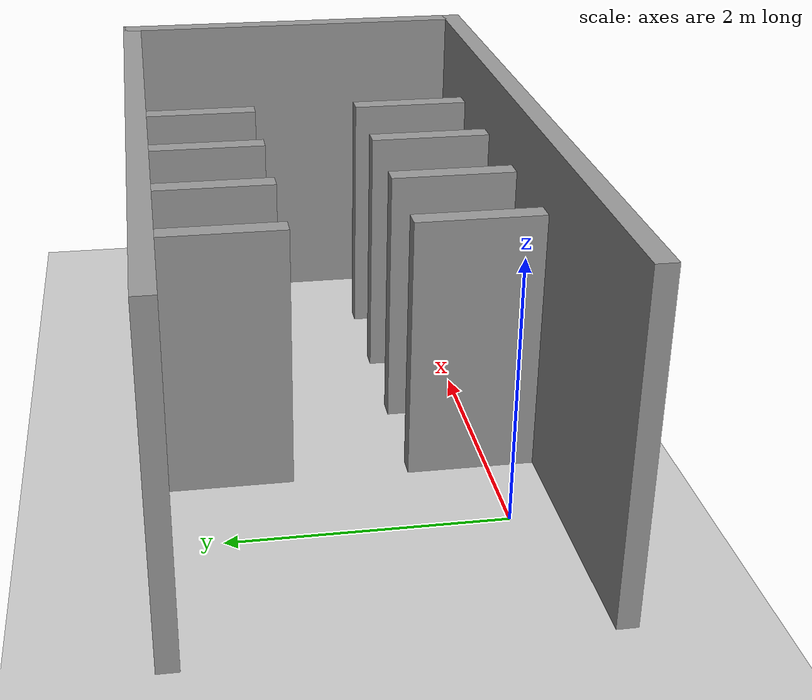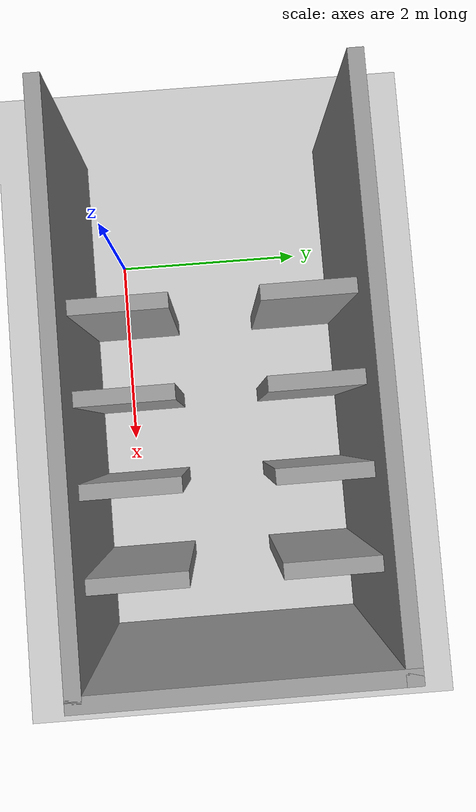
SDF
<?xml version="1.0" ?>

<sdf version="1.5">
	<world name="default">
		<!-- A global light source -->
		<include>
			<uri>model://sun</uri>
		</include>

		<!-- A ground plane -->
		<include>
			<uri>model://ground_plane</uri>
		</include>

		<!-- A walls -->
		<include>
			<uri>model://robocop_maze</uri>
			<pose>1.5 1 0 0 0 -3.139 </pose>
		</include>

		<include>
			<name>product1</name>
			<uri>model://product</uri>
			<pose>3.76 2 0 0 0 0 </pose>
		</include>

		<include>
			<name>product2</name>
			<uri>model://product</uri>
			<pose>2.89 2 0 0 0 0 </pose>
		</include>

		<include>
			<name>product3</name>
			<uri>model://product</uri>
			<pose>2.04 2 0 0 0 0 </pose>
		</include>

		<include>
			<name>product4</name>
			<uri>model://product</uri>
			<pose>1.14 2 0 0 0 0 </pose>
		</include>

		<include>
			<name>product5</name>
			<uri>model://product</uri>
			<pose>3.76 0 0 0 0 0 </pose>
		</include>

		<include>
			<name>product6</name>
			<uri>model://product</uri>
			<pose>2.89 0 0 0 0 0 </pose>
		</include>

		<include>
			<name>product7</name>
			<uri>model://product</uri>
			<pose>2.04 0 0 0 0 0 </pose>
		</include>

		<include>
			<name>product8</name>
			<uri>model://product</uri>
			<pose>1.14 0 0 0 0 0 </pose>
		</include>

	</world>
</sdf>

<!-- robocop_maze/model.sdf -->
<sdf version='1.7'>
  <model name='robocop_maze'>
    <pose>-0.512 0.022 0 0 -0 0</pose>
    <link name='Wall_27'>
      <collision name='Wall_27_Collision'>
        <geometry>
          <box>
            <size>1 0.15 2</size>
          </box>
        </geometry>
        <pose>0 0 1 0 -0 0</pose>
      </collision>
      <visual name='Wall_27_Visual'>
        <pose>0 0 1 0 -0 0</pose>
        <geometry>
          <box>
            <size>1 0.15 2</size>
          </box>
        </geometry>
        <material>
          <script>
            <uri>file://media/materials/scripts/gazebo.material</uri>
            <name>Gazebo/Grey</name>
          </script>
          <ambient>1 1 1 1</ambient>
        </material>
        <meta>
          <layer>0</layer>
        </meta>
      </visual>
      <pose>-0.111 0.906 0 0 -0 1.5708</pose>
    </link>
    <link name='Wall_29'>
      <collision name='Wall_29_Collision'>
        <geometry>
          <box>
            <size>1 0.15 2</size>
          </box>
        </geometry>
        <pose>0 0 1 0 -0 0</pose>
      </collision>
      <visual name='Wall_29_Visual'>
        <pose>0 0 1 0 -0 0</pose>
        <geometry>
          <box>
            <size>1 0.15 2</size>
          </box>
        </geometry>
        <material>
          <script>
            <uri>file://media/materials/scripts/gazebo.material</uri>
            <name>Gazebo/Grey</name>
          </script>
          <ambient>1 1 1 1</ambient>
        </material>
        <meta>
          <layer>0</layer>
        </meta>
      </visual>
      <pose>0.739 0.906 0 0 -0 1.5708</pose>
    </link>
    <link name='Wall_32'>
      <collision name='Wall_32_Collision'>
        <geometry>
          <box>
            <size>1 0.15 2</size>
          </box>
        </geometry>
        <pose>0 0 1 0 -0 0</pose>
      </collision>
      <visual name='Wall_32_Visual'>
        <pose>0 0 1 0 -0 0</pose>
        <geometry>
          <box>
            <size>1 0.15 2</size>
          </box>
        </geometry>
        <material>
          <script>
            <uri>file://media/materials/scripts/gazebo.material</uri>
            <name>Gazebo/Grey</name>
          </script>
          <ambient>1 1 1 1</ambient>
        </material>
        <meta>
          <layer>0</layer>
        </meta>
      </visual>
      <pose>-1.811 -0.944 0 0 -0 1.5708</pose>
    </link>
    <link name='Wall_35'>
      <collision name='Wall_35_Collision'>
        <geometry>
          <box>
            <size>1 0.15 2</size>
          </box>
        </geometry>
        <pose>0 0 1 0 -0 0</pose>
      </collision>
      <visual name='Wall_35_Visual'>
        <pose>0 0 1 0 -0 0</pose>
        <geometry>
          <box>
            <size>1 0.15 2</size>
          </box>
        </geometry>
        <material>
          <script>
            <uri>file://media/materials/scripts/gazebo.material</uri>
            <name>Gazebo/Grey</name>
          </script>
          <ambient>1 1 1 1</ambient>
        </material>
        <meta>
          <layer>0</layer>
        </meta>
      </visual>
      <pose>-0.961 -0.944 0 0 -0 1.5708</pose>
    </link>
    <link name='Wall_38'>
      <collision name='Wall_38_Collision'>
        <geometry>
          <box>
            <size>1 0.15 2</size>
          </box>
        </geometry>
        <pose>0 0 1 0 -0 0</pose>
      </collision>
      <visual name='Wall_38_Visual'>
        <pose>0 0 1 0 -0 0</pose>
        <geometry>
          <box>
            <size>1 0.15 2</size>
          </box>
        </geometry>
        <material>
          <script>
            <uri>file://media/materials/scripts/gazebo.material</uri>
            <name>Gazebo/Grey</name>
          </script>
          <ambient>1 1 1 1</ambient>
        </material>
        <meta>
          <layer>0</layer>
        </meta>
      </visual>
      <pose>-0.111 -0.944 0 0 -0 1.5708</pose>
    </link>
    <link name='Wall_41'>
      <collision name='Wall_41_Collision'>
        <geometry>
          <box>
            <size>1 0.15 2</size>
          </box>
        </geometry>
        <pose>0 0 1 0 -0 0</pose>
      </collision>
      <visual name='Wall_41_Visual'>
        <pose>0 0 1 0 -0 0</pose>
        <geometry>
          <box>
            <size>1 0.15 2</size>
          </box>
        </geometry>
        <material>
          <script>
            <uri>file://media/materials/scripts/gazebo.material</uri>
            <name>Gazebo/Grey</name>
          </script>
          <ambient>1 1 1 1</ambient>
        </material>
        <meta>
          <layer>0</layer>
        </meta>
      </visual>
      <pose>0.739 -0.944 0 0 -0 1.5708</pose>
    </link>
    <link name='Wall_44'>
      <collision name='Wall_44_Collision'>
        <geometry>
          <box>
            <size>1 0.15 2</size>
          </box>
        </geometry>
        <pose>0 0 1 0 -0 0</pose>
      </collision>
      <visual name='Wall_44_Visual'>
        <pose>0 0 1 0 -0 0</pose>
        <geometry>
          <box>
            <size>1 0.15 2</size>
          </box>
        </geometry>
        <material>
          <script>
            <uri>file://media/materials/scripts/gazebo.material</uri>
            <name>Gazebo/Grey</name>
          </script>
          <ambient>1 1 1 1</ambient>
        </material>
        <meta>
          <layer>0</layer>
        </meta>
      </visual>
      <pose>-0.961 0.906 0 0 -0 -1.5708</pose>
    </link>
    <link name='Wall_47'>
      <collision name='Wall_47_Collision'>
        <geometry>
          <box>
            <size>1 0.15 2</size>
          </box>
        </geometry>
        <pose>0 0 1 0 -0 0</pose>
      </collision>
      <visual name='Wall_47_Visual'>
        <pose>0 0 1 0 -0 0</pose>
        <geometry>
          <box>
            <size>1 0.15 2</size>
          </box>
        </geometry>
        <material>
          <script>
            <uri>file://media/materials/scripts/gazebo.material</uri>
            <name>Gazebo/Grey</name>
          </script>
          <ambient>1 1 1 1</ambient>
        </material>
        <meta>
          <layer>0</layer>
        </meta>
      </visual>
      <pose>-1.811 0.906 0 0 -0 -1.5708</pose>
    </link>
    <link name='Wall_49'>
      <collision name='Wall_49_Collision'>
        <geometry>
          <box>
            <size>5.5 0.15 2.5</size>
          </box>
        </geometry>
        <pose>0 0 1.25 0 -0 0</pose>
      </collision>
      <visual name='Wall_49_Visual'>
        <pose>0 0 1.25 0 -0 0</pose>
        <geometry>
          <box>
            <size>5.5 0.15 2.5</size>
          </box>
        </geometry>
        <material>
          <script>
            <uri>file://media/materials/scripts/gazebo.material</uri>
            <name>Gazebo/Grey</name>
          </script>
          <ambient>1 1 1 1</ambient>
        </material>
        <meta>
          <layer>0</layer>
        </meta>
      </visual>
      <pose>0 -1.425 0 0 -0 0</pose>
    </link>
    <link name='Wall_52'>
      <collision name='Wall_52_Collision'>
        <geometry>
          <box>
            <size>5.5 0.15 2.5</size>
          </box>
        </geometry>
        <pose>0 0 1.25 0 -0 0</pose>
      </collision>
      <visual name='Wall_52_Visual'>
        <pose>0 0 1.25 0 -0 0</pose>
        <geometry>
          <box>
            <size>5.5 0.15 2.5</size>
          </box>
        </geometry>
        <material>
          <script>
            <uri>file://media/materials/scripts/gazebo.material</uri>
            <name>Gazebo/Grey</name>
          </script>
          <ambient>1 1 1 1</ambient>
        </material>
        <meta>
          <layer>0</layer>
        </meta>
      </visual>
      <pose>0 1.425 0 0 -0 0</pose>
    </link>
    <link name='Wall_9'>
      <collision name='Wall_9_Collision'>
        <geometry>
          <box>
            <size>3 0.15 2.5</size>
          </box>
        </geometry>
        <pose>0 0 1.25 0 -0 0</pose>
      </collision>
      <visual name='Wall_9_Visual'>
        <pose>0 0 1.25 0 -0 0</pose>
        <geometry>
          <box>
            <size>3 0.15 2.5</size>
          </box>
        </geometry>
        <material>
          <script>
            <uri>file://media/materials/scripts/gazebo.material</uri>
            <name>Gazebo/Grey</name>
          </script>
          <ambient>1 1 1 1</ambient>
        </material>
        <meta>
          <layer>0</layer>
        </meta>
      </visual>
      <pose>-2.675 0 0 0 -0 -1.5708</pose>
    </link>
    <static>1</static>
  </model>
</sdf>

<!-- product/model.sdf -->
<sdf version='1.7'>
  <model name='product'>
    <link name='link'>
      <inertial>
        <mass>0.000118317</mass>
        <inertia>
          <ixx>2.85084e-08</ixx>
          <ixy>0</ixy>
          <ixz>0</ixz>
          <iyy>2.85084e-08</iyy>
          <iyz>0</iyz>
          <izz>2.85084e-08</izz>
        </inertia>
        <pose>0 0 0 0 -0 0</pose>
      </inertial>
      <self_collide>0</self_collide>
      <enable_wind>0</enable_wind>
      <kinematic>0</kinematic>
      <pose>0 0 -0.292751 0 -0 0</pose>
      <visual name='visual'>
        <geometry>
          <sphere>
            <radius>0.0245433</radius>
          </sphere>
        </geometry>
        <material>
          <script>
            <name>Gazebo/Grey</name>
            <uri>file://media/materials/scripts/gazebo.material</uri>
          </script>
          <shader type='pixel'/>
        </material>
        <pose>0 0 0 0 -0 0</pose>
        <transparency>0</transparency>
        <cast_shadows>1</cast_shadows>
      </visual>
      <collision name='collision'>
        <laser_retro>0</laser_retro>
        <max_contacts>10</max_contacts>
        <pose>0 0 0 0 -0 0</pose>
        <geometry>
          <sphere>
            <radius>0.024543</radius>
          </sphere>
        </geometry>
        <surface>
          <friction>
            <ode>
              <mu>1</mu>
              <mu2>1</mu2>
              <fdir1>0 0 0</fdir1>
              <slip1>0</slip1>
              <slip2>0</slip2>
            </ode>
            <torsional>
              <coefficient>1</coefficient>
              <patch_radius>0</patch_radius>
              <surface_radius>0</surface_radius>
              <use_patch_radius>1</use_patch_radius>
              <ode>
                <slip>0</slip>
              </ode>
            </torsional>
          </friction>
          <bounce>
            <restitution_coefficient>0</restitution_coefficient>
            <threshold>1e+06</threshold>
          </bounce>
          <contact>
            <collide_without_contact>0</collide_without_contact>
            <collide_without_contact_bitmask>1</collide_without_contact_bitmask>
            <collide_bitmask>1</collide_bitmask>
            <ode>
              <soft_cfm>0</soft_cfm>
              <soft_erp>0.2</soft_erp>
              <kp>1e+13</kp>
              <kd>1</kd>
              <max_vel>0.01</max_vel>
              <min_depth>0</min_depth>
            </ode>
            <bullet>
              <split_impulse>1</split_impulse>
              <split_impulse_penetration_threshold>-0.01</split_impulse_penetration_threshold>
              <soft_cfm>0</soft_cfm>
              <soft_erp>0.2</soft_erp>
              <kp>1e+13</kp>
              <kd>1</kd>
            </bullet>
          </contact>
        </surface>
      </collision>
    </link>
    <static>0</static>
    <allow_auto_disable>1</allow_auto_disable>
  </model>
</sdf>
